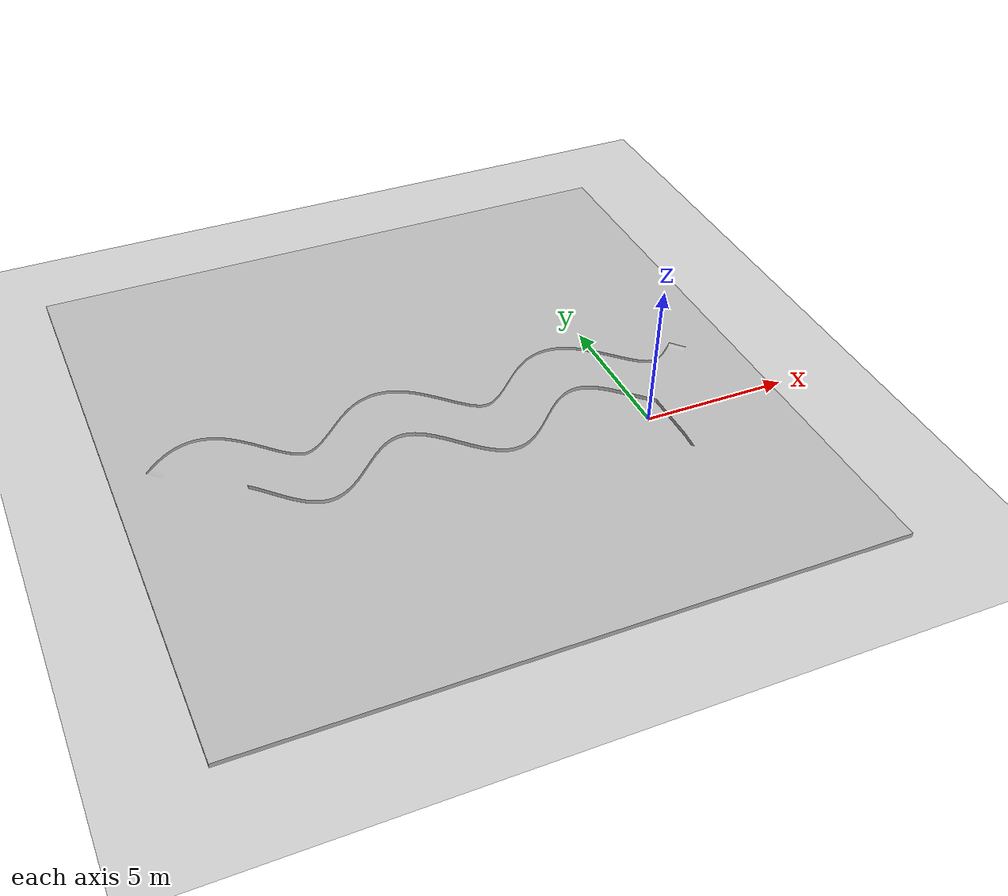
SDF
<?xml version="1.0" ?>
<sdf version="1.5">
	<world name="default">

		<include>
			<uri>model://sun</uri>
		</include>

<!-- custom models -->
		<include>
			<uri>model://ground_plane</uri>
		</include>

		<include>
			<uri>model://curve_path</uri>
			<name>curve_path</name>
			<pose>-6.267659 2.969123 0 0 0 0</pose>
		</include>

	</world>
</sdf>

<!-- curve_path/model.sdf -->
<sdf version="1.6">
  <model name="curve_path">
    <pose>-3.14159265359 4 0  1.57079632679 0 0</pose>
    <static>true</static>
    <link name="link">
      <collision name="colision1">
        <geometry>
          <mesh>
            <uri>model://curve_path/meshes/path.dae</uri>
          </mesh>
        </geometry>
      </collision>

      <visual name="visual1">
        <cast_shadows>true</cast_shadows>
        <geometry>
          <mesh>
            <uri>model://curve_path/meshes/path.dae</uri>
          </mesh>
        </geometry>
      </visual>

    </link>
  </model>
</sdf>
